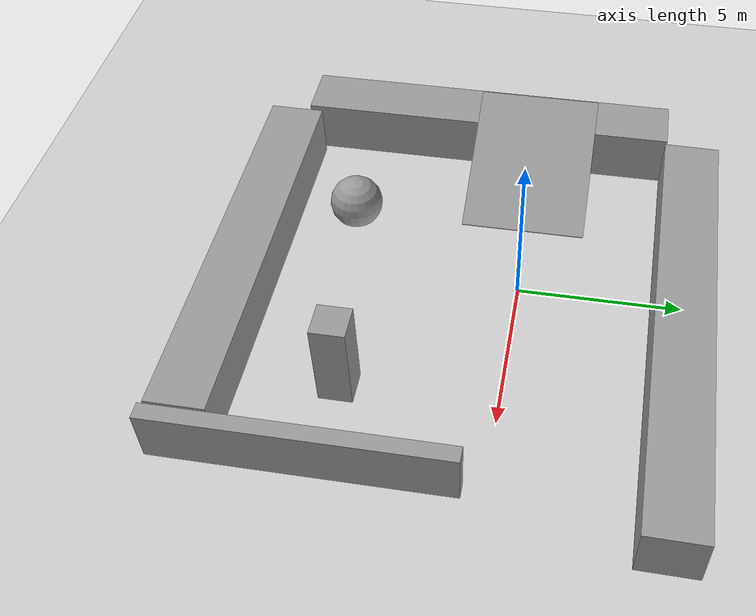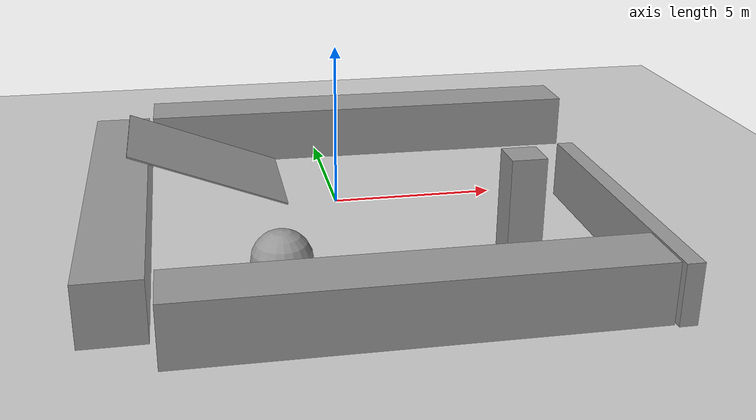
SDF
<sdf version="1.7">
 <world name="default">
  <light name="sun" type="directional">
   <pose>0 0 10 0 -0 0</pose>
   <diffuse>0.8 0.8 0.8 1</diffuse>
   <specular>0.2 0.2 0.2 1</specular>
   <attenuation>
    <range>1000</range>
    <constant>0.9</constant>
    <linear>0.01</linear>
    <quadratic>0.001</quadratic>
   </attenuation>
   <direction>-0.5 0.1 -0.9</direction>
   <spot><inner_angle>0</inner_angle><outer_angle>0</outer_angle><falloff>0</falloff></spot>
  </light>
  <model name="ground_plane">
   <static>1</static>
   <link name="link">
    <collision name="collision">
     <geometry><plane><normal>0 0 1</normal><size>100 100</size></plane></geometry>
     <surface>
      <contact><collide_bitmask>65535</collide_bitmask></contact>
      <friction><ode><mu>100</mu><mu2>50</mu2></ode></friction>
     </surface>
    </collision>
    <visual name="visual">
     <cast_shadows>0</cast_shadows>
     <geometry><plane><normal>0 0 1</normal><size>100 100</size></plane></geometry>
     <material>
      <script><uri>file://media/materials/scripts/gazebo.material</uri><name>Gazebo/Grey</name></script>
     </material>
    </visual>
   </link>
  </model>
  <gravity>0 0 -9.8</gravity>
  <magnetic_field>6e-06 2.3e-05 -4.2e-05</magnetic_field>
  <atmosphere type="adiabatic"/>
  <physics type="ode">
   <max_step_size>0.001</max_step_size>
   <real_time_factor>1</real_time_factor>
   <real_time_update_rate>1000</real_time_update_rate>
  </physics>
  <scene><ambient>0.4 0.4 0.4 1</ambient><background>0.7 0.7 0.7 1</background><shadows>1</shadows></scene>
  <spherical_coordinates>
   <surface_model>EARTH_WGS84</surface_model>
   <latitude_deg>0</latitude_deg>
   <longitude_deg>0</longitude_deg>
   <elevation>0</elevation>
   <heading_deg>0</heading_deg>
  </spherical_coordinates>
  <model name="rampworldnew">
   <link name="link_0">
    <inertial>
     <mass>3.57056e+06</mass>
     <inertia>
      <ixx>4.41918e+07</ixx>
      <ixy>0</ixy>
      <ixz>0</ixz>
      <iyy>1.76113e+06</iyy>
      <iyz>0</iyz>
      <izz>4.41966e+07</izz>
     </inertia>
    </inertial>
    <pose>-5.48954 -0.381079 -0.132793 0 -0 0</pose>
    <visual name="visual">
     <geometry><box><size>1.72264 12.0652 1.71795</size></box></geometry>
     <material>
      <lighting>1</lighting>
      <script><uri>file://media/materials/scripts/gazebo.material</uri><name>Gazebo/Grey</name></script>
      <shader type="pixel"><normal_map>__default__</normal_map></shader>
     </material>
    </visual>
    <collision name="collision">
     <geometry><box><size>1.72264 12.0652 1.71795</size></box></geometry>
     <surface>
      <friction>
       <ode><mu>1</mu><mu2>1</mu2><fdir1>0 0 0</fdir1><slip1>0</slip1><slip2>0</slip2></ode>
       <torsional>
        <coefficient>1</coefficient>
        <patch_radius>0</patch_radius>
        <surface_radius>0</surface_radius>
        <use_patch_radius>1</use_patch_radius>
        <ode><slip>0</slip></ode>
       </torsional>
      </friction>
      <bounce><restitution_coefficient>0</restitution_coefficient><threshold>1e+06</threshold></bounce>
      <contact>
       <collide_without_contact>0</collide_without_contact>
       <collide_without_contact_bitmask>1</collide_without_contact_bitmask>
       <collide_bitmask>1</collide_bitmask>
       <ode>
        <soft_cfm>0</soft_cfm>
        <soft_erp>0.2</soft_erp>
        <kp>1e+13</kp>
        <kd>1</kd>
        <max_vel>0.01</max_vel>
        <min_depth>0</min_depth>
       </ode>
       <bullet>
        <split_impulse>1</split_impulse>
        <split_impulse_penetration_threshold>-0.01</split_impulse_penetration_threshold>
        <soft_cfm>0</soft_cfm>
        <soft_erp>0.2</soft_erp>
        <kp>1e+13</kp>
        <kd>1</kd>
       </bullet>
      </contact>
     </surface>
    </collision>
   </link>
   <link name="link_0_1">
    <inertial>
     <mass>2.89336e+06</mass>
     <inertia>
      <ixx>2.2596e+06</ixx>
      <ixy>0</ixy>
      <ixz>0</ixz>
      <iyy>2.2596e+06</iyy>
      <iyz>0</iyz>
      <izz>482227</izz>
     </inertia>
    </inertial>
    <pose>5.61868 -3.10624 0.534001 0 -0 0</pose>
    <visual name="visual">
     <geometry><box><size>1 1 2.89336</size></box></geometry>
     <material>
      <lighting>1</lighting>
      <script><uri>file://media/materials/scripts/gazebo.material</uri><name>Gazebo/Grey</name></script>
      <shader type="pixel"><normal_map>__default__</normal_map></shader>
     </material>
    </visual>
    <collision name="collision">
     <geometry><box><size>1 1 2.89336</size></box></geometry>
     <surface>
      <friction>
       <ode><mu>1</mu><mu2>1</mu2><fdir1>0 0 0</fdir1><slip1>0</slip1><slip2>0</slip2></ode>
       <torsional>
        <coefficient>1</coefficient>
        <patch_radius>0</patch_radius>
        <surface_radius>0</surface_radius>
        <use_patch_radius>1</use_patch_radius>
        <ode><slip>0</slip></ode>
       </torsional>
      </friction>
      <bounce><restitution_coefficient>0</restitution_coefficient><threshold>1e+06</threshold></bounce>
      <contact>
       <collide_without_contact>0</collide_without_contact>
       <collide_without_contact_bitmask>1</collide_without_contact_bitmask>
       <collide_bitmask>1</collide_bitmask>
       <ode>
        <soft_cfm>0</soft_cfm>
        <soft_erp>0.2</soft_erp>
        <kp>1e+13</kp>
        <kd>1</kd>
        <max_vel>0.01</max_vel>
        <min_depth>0</min_depth>
       </ode>
       <bullet>
        <split_impulse>1</split_impulse>
        <split_impulse_penetration_threshold>-0.01</split_impulse_penetration_threshold>
        <soft_cfm>0</soft_cfm>
        <soft_erp>0.2</soft_erp>
        <kp>1e+13</kp>
        <kd>1</kd>
       </bullet>
      </contact>
     </surface>
    </collision>
   </link>
   <link name="link_0_1_clone">
    <inertial>
     <mass>780854</mass>
     <inertia>
      <ixx>949630</ixx>
      <ixy>0</ixy>
      <ixz>0</ixz>
      <iyy>1.53383e+06</iyy>
      <iyz>0</iyz>
      <izz>2.48323e+06</izz>
     </inertia>
    </inertial>
    <pose>-2.88209 1.35351 0.745586 0 0.369399 0</pose>
    <self_collide>1</self_collide>
    <visual name="visual">
     <geometry><box><size>4.85487 3.81994 0.042078</size></box></geometry>
     <material>
      <lighting>1</lighting>
      <script><uri>file://media/materials/scripts/gazebo.material</uri><name>Gazebo/Grey</name></script>
      <shader type="pixel"><normal_map>__default__</normal_map></shader>
      <ambient>0.3 0.3 0.3 1</ambient>
      <diffuse>0.7 0.7 0.7 1</diffuse>
      <specular>0.01 0.01 0.01 1</specular>
      <emissive>0 0 0 1</emissive>
     </material>
    </visual>
    <collision name="collision">
     <geometry><box><size>4.85487 3.81994 0.042078</size></box></geometry>
     <surface>
      <friction>
       <ode><mu>1</mu><mu2>1</mu2><fdir1>0 0 0</fdir1><slip1>0</slip1><slip2>0</slip2></ode>
       <torsional>
        <coefficient>1</coefficient>
        <patch_radius>0</patch_radius>
        <surface_radius>0</surface_radius>
        <use_patch_radius>1</use_patch_radius>
        <ode><slip>0</slip></ode>
       </torsional>
      </friction>
      <bounce><restitution_coefficient>0</restitution_coefficient><threshold>1e+06</threshold></bounce>
      <contact>
       <collide_without_contact>0</collide_without_contact>
       <collide_without_contact_bitmask>1</collide_without_contact_bitmask>
       <collide_bitmask>1</collide_bitmask>
       <ode>
        <soft_cfm>0</soft_cfm>
        <soft_erp>0.2</soft_erp>
        <kp>1e+13</kp>
        <kd>1</kd>
        <max_vel>0.01</max_vel>
        <min_depth>0</min_depth>
       </ode>
       <bullet>
        <split_impulse>1</split_impulse>
        <split_impulse_penetration_threshold>-0.01</split_impulse_penetration_threshold>
        <soft_cfm>0</soft_cfm>
        <soft_erp>0.2</soft_erp>
        <kp>1e+13</kp>
        <kd>1</kd>
       </bullet>
      </contact>
     </surface>
    </collision>
   </link>
   <link name="link_0_clone">
    <inertial>
     <mass>4.27703e+06</mass>
     <inertia>
      <ixx>7.54978e+07</ixx>
      <ixy>0</ixy>
      <ixz>0</ixz>
      <iyy>2.10959e+06</iyy>
      <iyz>0</iyz>
      <izz>7.55036e+07</izz>
     </inertia>
    </inertial>
    <pose>2.73654 6.36262 -0.132793 0 -0 -1.58252</pose>
    <visual name="visual">
     <geometry><box><size>1.72264 14.4524 1.71795</size></box></geometry>
     <material>
      <lighting>1</lighting>
      <script><uri>file://media/materials/scripts/gazebo.material</uri><name>Gazebo/Grey</name></script>
      <shader type="pixel"><normal_map>__default__</normal_map></shader>
     </material>
    </visual>
    <collision name="collision">
     <geometry><box><size>1.72264 14.4524 1.71795</size></box></geometry>
     <surface>
      <friction>
       <ode><mu>1</mu><mu2>1</mu2><fdir1>0 0 0</fdir1><slip1>0</slip1><slip2>0</slip2></ode>
       <torsional>
        <coefficient>1</coefficient>
        <patch_radius>0</patch_radius>
        <surface_radius>0</surface_radius>
        <use_patch_radius>1</use_patch_radius>
        <ode><slip>0</slip></ode>
       </torsional>
      </friction>
      <bounce><restitution_coefficient>0</restitution_coefficient><threshold>1e+06</threshold></bounce>
      <contact>
       <collide_without_contact>0</collide_without_contact>
       <collide_without_contact_bitmask>1</collide_without_contact_bitmask>
       <collide_bitmask>1</collide_bitmask>
       <ode>
        <soft_cfm>0</soft_cfm>
        <soft_erp>0.2</soft_erp>
        <kp>1e+13</kp>
        <kd>1</kd>
        <max_vel>0.01</max_vel>
        <min_depth>0</min_depth>
       </ode>
       <bullet>
        <split_impulse>1</split_impulse>
        <split_impulse_penetration_threshold>-0.01</split_impulse_penetration_threshold>
        <soft_cfm>0</soft_cfm>
        <soft_erp>0.2</soft_erp>
        <kp>1e+13</kp>
        <kd>1</kd>
       </bullet>
      </contact>
     </surface>
    </collision>
   </link>
   <link name="link_0_clone_0">
    <inertial>
     <mass>730771</mass>
     <inertia>
      <ixx>4.77091e+06</ixx>
      <ixy>0</ixy>
      <ixz>0</ixz>
      <iyy>194346</iyy>
      <iyz>0</iyz>
      <izz>4.6058e+06</izz>
     </inertia>
    </inertial>
    <pose>8.38857 -3.49398 -0.132793 0 -0 0</pose>
    <visual name="visual">
     <geometry><box><size>0.489911 8.68285 1.71795</size></box></geometry>
     <material>
      <lighting>1</lighting>
      <script><uri>file://media/materials/scripts/gazebo.material</uri><name>Gazebo/Grey</name></script>
      <shader type="pixel"><normal_map>__default__</normal_map></shader>
     </material>
    </visual>
    <collision name="collision">
     <geometry><box><size>0.489911 8.68285 1.71795</size></box></geometry>
     <surface>
      <friction>
       <ode><mu>1</mu><mu2>1</mu2><fdir1>0 0 0</fdir1><slip1>0</slip1><slip2>0</slip2></ode>
       <torsional>
        <coefficient>1</coefficient>
        <patch_radius>0</patch_radius>
        <surface_radius>0</surface_radius>
        <use_patch_radius>1</use_patch_radius>
        <ode><slip>0</slip></ode>
       </torsional>
      </friction>
      <bounce><restitution_coefficient>0</restitution_coefficient><threshold>1e+06</threshold></bounce>
      <contact>
       <collide_without_contact>0</collide_without_contact>
       <collide_without_contact_bitmask>1</collide_without_contact_bitmask>
       <collide_bitmask>1</collide_bitmask>
       <ode>
        <soft_cfm>0</soft_cfm>
        <soft_erp>0.2</soft_erp>
        <kp>1e+13</kp>
        <kd>1</kd>
        <max_vel>0.01</max_vel>
        <min_depth>0</min_depth>
       </ode>
       <bullet>
        <split_impulse>1</split_impulse>
        <split_impulse_penetration_threshold>-0.01</split_impulse_penetration_threshold>
        <soft_cfm>0</soft_cfm>
        <soft_erp>0.2</soft_erp>
        <kp>1e+13</kp>
        <kd>1</kd>
       </bullet>
      </contact>
     </surface>
    </collision>
   </link>
   <link name="link_0_clone_clone">
    <inertial>
     <mass>3.70042e+06</mass>
     <inertia>
      <ixx>4.91235e+07</ixx>
      <ixy>0</ixy>
      <ixz>0</ixz>
      <iyy>1.82518e+06</iyy>
      <iyz>0</iyz>
      <izz>4.91285e+07</izz>
     </inertia>
    </inertial>
    <pose>1.83168 -6.83554 -0.132793 0 0 -1.57429</pose>
    <visual name="visual">
     <geometry><box><size>1.72264 12.504 1.71795</size></box></geometry>
     <material>
      <lighting>1</lighting>
      <script><uri>file://media/materials/scripts/gazebo.material</uri><name>Gazebo/Grey</name></script>
      <shader type="pixel"><normal_map>__default__</normal_map></shader>
     </material>
    </visual>
    <collision name="collision">
     <geometry><box><size>1.72264 12.504 1.71795</size></box></geometry>
     <surface>
      <friction>
       <ode><mu>1</mu><mu2>1</mu2><fdir1>0 0 0</fdir1><slip1>0</slip1><slip2>0</slip2></ode>
       <torsional>
        <coefficient>1</coefficient>
        <patch_radius>0</patch_radius>
        <surface_radius>0</surface_radius>
        <use_patch_radius>1</use_patch_radius>
        <ode><slip>0</slip></ode>
       </torsional>
      </friction>
      <bounce><restitution_coefficient>0</restitution_coefficient><threshold>1e+06</threshold></bounce>
      <contact>
       <collide_without_contact>0</collide_without_contact>
       <collide_without_contact_bitmask>1</collide_without_contact_bitmask>
       <collide_bitmask>1</collide_bitmask>
       <ode>
        <soft_cfm>0</soft_cfm>
        <soft_erp>0.2</soft_erp>
        <kp>1e+13</kp>
        <kd>1</kd>
        <max_vel>0.01</max_vel>
        <min_depth>0</min_depth>
       </ode>
       <bullet>
        <split_impulse>1</split_impulse>
        <split_impulse_penetration_threshold>-0.01</split_impulse_penetration_threshold>
        <soft_cfm>0</soft_cfm>
        <soft_erp>0.2</soft_erp>
        <kp>1e+13</kp>
        <kd>1</kd>
       </bullet>
      </contact>
     </surface>
    </collision>
   </link>
   <link name="link_1">
    <inertial>
     <mass>245969</mass>
     <inertia><ixx>68992.1</ixx><ixy>0</ixy><ixz>0</ixz><iyy>68992.1</iyy><iyz>0</iyz><izz>68992.1</izz></inertia>
    </inertial>
    <pose>-1.18916 -4.09146 -0.192015 0 -0 0</pose>
    <visual name="visual">
     <geometry><sphere><radius>0.837393</radius></sphere></geometry>
     <material>
      <lighting>1</lighting>
      <script><uri>file://media/materials/scripts/gazebo.material</uri><name>Gazebo/Grey</name></script>
      <shader type="pixel"><normal_map>__default__</normal_map></shader>
     </material>
    </visual>
    <collision name="collision">
     <geometry><sphere><radius>0.837393</radius></sphere></geometry>
     <surface>
      <friction>
       <ode><mu>1</mu><mu2>1</mu2><fdir1>0 0 0</fdir1><slip1>0</slip1><slip2>0</slip2></ode>
       <torsional>
        <coefficient>1</coefficient>
        <patch_radius>0</patch_radius>
        <surface_radius>0</surface_radius>
        <use_patch_radius>1</use_patch_radius>
        <ode><slip>0</slip></ode>
       </torsional>
      </friction>
      <bounce><restitution_coefficient>0</restitution_coefficient><threshold>1e+06</threshold></bounce>
      <contact>
       <collide_without_contact>0</collide_without_contact>
       <collide_without_contact_bitmask>1</collide_without_contact_bitmask>
       <collide_bitmask>1</collide_bitmask>
       <ode>
        <soft_cfm>0</soft_cfm>
        <soft_erp>0.2</soft_erp>
        <kp>1e+13</kp>
        <kd>1</kd>
        <max_vel>0.01</max_vel>
        <min_depth>0</min_depth>
       </ode>
       <bullet>
        <split_impulse>1</split_impulse>
        <split_impulse_penetration_threshold>-0.01</split_impulse_penetration_threshold>
        <soft_cfm>0</soft_cfm>
        <soft_erp>0.2</soft_erp>
        <kp>1e+13</kp>
        <kd>1</kd>
       </bullet>
      </contact>
     </surface>
    </collision>
   </link>
   <static>0</static>
   <pose>-1.12222 -1.4615 0.991747 0 2e-06 1.4e-05</pose>
  </model>
 </world>
</sdf>
